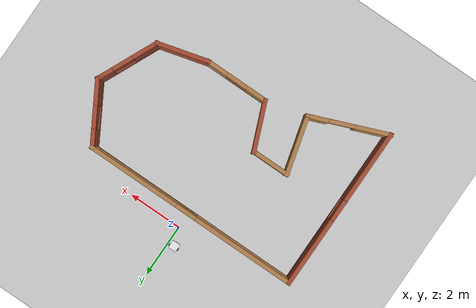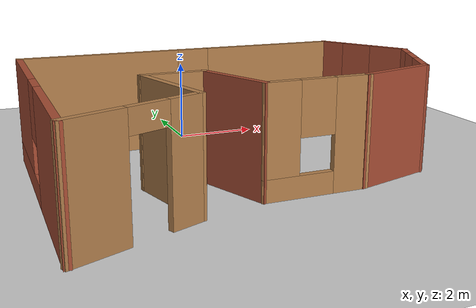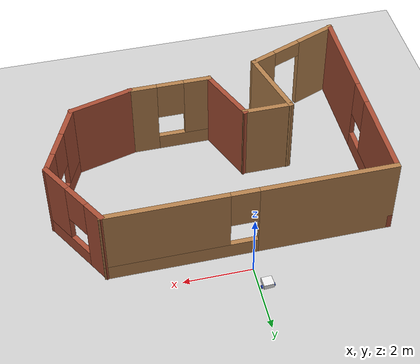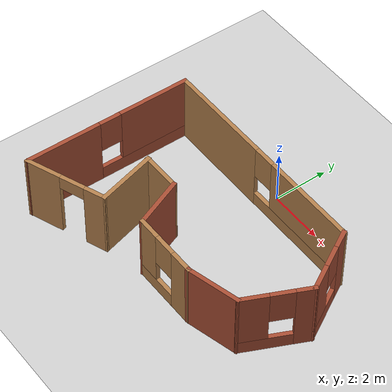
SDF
<sdf version="1.7">
 <world name="default">
  <light name="sun" type="directional">
   <pose>0 0 10 0 -0 0</pose>
   <diffuse>0.8 0.8 0.8 1</diffuse>
   <specular>0.2 0.2 0.2 1</specular>
   <attenuation>
    <range>1000</range>
    <constant>0.9</constant>
    <linear>0.01</linear>
    <quadratic>0.001</quadratic>
   </attenuation>
   <direction>-0.5 0.1 -0.9</direction>
   <spot><inner_angle>0</inner_angle><outer_angle>0</outer_angle><falloff>0</falloff></spot>
  </light>
  <model name="ground_plane">
   <static>1</static>
   <link name="link">
    <collision name="collision">
     <geometry><plane><normal>0 0 1</normal><size>100 100</size></plane></geometry>
     <surface>
      <contact><collide_bitmask>65535</collide_bitmask></contact>
      <friction><ode><mu>100</mu><mu2>50</mu2></ode></friction>
     </surface>
    </collision>
    <visual name="visual">
     <cast_shadows>0</cast_shadows>
     <geometry><plane><normal>0 0 1</normal><size>100 100</size></plane></geometry>
     <material>
      <script><uri>file://media/materials/scripts/gazebo.material</uri><name>Gazebo/Grey</name></script>
     </material>
    </visual>
   </link>
  </model>
  <gravity>0 0 -9.8</gravity>
  <magnetic_field>6e-06 2.3e-05 -4.2e-05</magnetic_field>
  <atmosphere type="adiabatic"/>
  <physics type="ode">
   <max_step_size>0.001</max_step_size>
   <real_time_factor>1</real_time_factor>
   <real_time_update_rate>1000</real_time_update_rate>
  </physics>
  <scene><ambient>0.4 0.4 0.4 1</ambient><background>0.7 0.7 0.7 1</background><shadows>1</shadows></scene>
  <audio><device>default</device></audio>
  <spherical_coordinates>
   <surface_model>EARTH_WGS84</surface_model>
   <latitude_deg>0</latitude_deg>
   <longitude_deg>0</longitude_deg>
   <elevation>0</elevation>
   <heading_deg>0</heading_deg>
  </spherical_coordinates>
  <model name="my_bot">
   <link name="base_link">
    <inertial>
     <pose>0.065 0 0.0625 0 -0 0</pose>
     <mass>0.6</mass>
     <inertia>
      <ixx>0.00525625</ixx>
      <ixy>0</ixy>
      <ixz>0.0005625</ixz>
      <iyy>0.00593125</iyy>
      <iyz>0</iyz>
      <izz>0.008275</izz>
     </inertia>
    </inertial>
    <collision name="base_link_fixed_joint_lump__chassis_collision">
     <pose>0.05 0 0.075 0 -0 0</pose>
     <geometry><box><size>0.3 0.3 0.15</size></box></geometry>
    </collision>
    <collision name="base_link_fixed_joint_lump__caster_wheel_collision_1">
     <pose>0.14 0 0 0 -0 0</pose>
     <geometry><sphere><radius>0.05</radius></sphere></geometry>
     <surface><friction><ode><mu>0.001</mu><mu2>0.001</mu2></ode></friction></surface>
    </collision>
    <visual name="base_link_fixed_joint_lump__chassis_visual">
     <pose>0.05 0 0.075 0 -0 0</pose>
     <geometry><box><size>0.3 0.3 0.15</size></box></geometry>
     <material>
      <script><name>Gazebo/White</name><uri>file://media/materials/scripts/gazebo.material</uri></script>
     </material>
    </visual>
    <visual name="base_link_fixed_joint_lump__camera_link_visual_1">
     <pose>0.205 0 0.08 0 -0 0</pose>
     <geometry><box><size>0.01 0.03 0.03</size></box></geometry>
     <material>
      <script><name>Gazebo/Black</name><uri>file://media/materials/scripts/gazebo.material</uri></script>
     </material>
    </visual>
    <visual name="base_link_fixed_joint_lump__caster_wheel_visual_2">
     <pose>0.14 0 0 0 -0 0</pose>
     <geometry><sphere><radius>0.05</radius></sphere></geometry>
     <material>
      <script><name>Gazebo/Black</name><uri>file://media/materials/scripts/gazebo.material</uri></script>
     </material>
    </visual>
    <sensor name="camera" type="camera">
     <visualize>1</visualize>
     <update_rate>10</update_rate>
     <camera>
      <horizontal_fov>1.089</horizontal_fov>
      <image><format>R8G8B8</format><width>640</width><height>480</height></image>
      <clip><near>0.05</near><far>8</far></clip>
     </camera>
     <plugin name="camera_controller" filename="libgazebo_ros_camera.so">
      <frame_name>camera_link_optical</frame_name>
     </plugin>
     <pose>0.205 0 0.08 0 -0 0</pose>
    </sensor>
   </link>
   <joint name="left_wheel_joint" type="revolute">
    <pose relative_to="base_link">0 0.175 0 -1.5708 0 0</pose>
    <parent>base_link</parent>
    <child>left_wheel</child>
    <axis>
     <xyz>0 0 1</xyz>
     <limit><lower>-1e+16</lower><upper>1e+16</upper></limit>
     <dynamics><spring_reference>0</spring_reference><spring_stiffness>0</spring_stiffness></dynamics>
    </axis>
   </joint>
   <link name="left_wheel">
    <pose relative_to="left_wheel_joint">0 0 0 0 -0 0</pose>
    <inertial>
     <mass>0.1</mass>
     <inertia>
      <ixx>7.58333e-05</ixx>
      <ixy>0</ixy>
      <ixz>0</ixz>
      <iyy>7.58333e-05</iyy>
      <iyz>0</iyz>
      <izz>0.000125</izz>
     </inertia>
    </inertial>
    <collision name="left_wheel_collision">
     <geometry><cylinder><length>0.04</length><radius>0.05</radius></cylinder></geometry>
    </collision>
    <visual name="left_wheel_visual">
     <geometry><cylinder><length>0.04</length><radius>0.05</radius></cylinder></geometry>
     <material>
      <script><name>Gazebo/Blue</name><uri>file://media/materials/scripts/gazebo.material</uri></script>
     </material>
    </visual>
   </link>
   <joint name="right_wheel_joint" type="revolute">
    <pose relative_to="base_link">0 -0.175 0 1.5708 -0 0</pose>
    <parent>base_link</parent>
    <child>right_wheel</child>
    <axis>
     <xyz>0 0 -1</xyz>
     <limit><lower>-1e+16</lower><upper>1e+16</upper></limit>
     <dynamics><spring_reference>0</spring_reference><spring_stiffness>0</spring_stiffness></dynamics>
    </axis>
   </joint>
   <link name="right_wheel">
    <pose relative_to="right_wheel_joint">0 0 0 0 -0 0</pose>
    <inertial>
     <mass>0.1</mass>
     <inertia>
      <ixx>7.58333e-05</ixx>
      <ixy>0</ixy>
      <ixz>0</ixz>
      <iyy>7.58333e-05</iyy>
      <iyz>0</iyz>
      <izz>0.000125</izz>
     </inertia>
    </inertial>
    <collision name="right_wheel_collision">
     <geometry><cylinder><length>0.04</length><radius>0.05</radius></cylinder></geometry>
    </collision>
    <visual name="right_wheel_visual">
     <geometry><cylinder><length>0.04</length><radius>0.05</radius></cylinder></geometry>
     <material>
      <script><name>Gazebo/Blue</name><uri>file://media/materials/scripts/gazebo.material</uri></script>
     </material>
    </visual>
   </link>
   <static>0</static>
   <plugin name="diff_drive" filename="libgazebo_ros_diff_drive.so">
    <left_joint>left_wheel_joint</left_joint>
    <right_joint>right_wheel_joint</right_joint>
    <wheel_separation>0.35</wheel_separation>
    <wheel_diameter>0.1</wheel_diameter>
    <max_wheel_torque>200</max_wheel_torque>
    <max_wheel_acceleration>10.0</max_wheel_acceleration>
    <odometry_frame>odom</odometry_frame>
    <robot_base_frame>base_link</robot_base_frame>
    <publish_odom>1</publish_odom>
    <publish_odom_tf>1</publish_odom_tf>
    <publish_wheel_tf>1</publish_wheel_tf>
   </plugin>
   <pose>-0.240761 0.673867 0.05 -0 1e-06 -1.51873</pose>
  </model>
  <model name="building">
   <pose>0.491842 -3.43201 0 0 -0 0</pose>
   <link name="Wall_0">
    <pose>-4.64664 -0.284616 0 0 -0 1.5708</pose>
    <visual name="Wall_0_Visual_0">
     <pose>-1.73077 0 1.25 0 -0 0</pose>
     <geometry><box><size>2.78845 0.15 2.5</size></box></geometry>
     <material>
      <script><uri>file://media/materials/scripts/gazebo.material</uri><name>Gazebo/Bricks</name></script>
      <ambient>1 1 1 1</ambient>
     </material>
     <meta><layer>0</layer></meta>
    </visual>
    <collision name="Wall_0_Collision_0">
     <geometry><box><size>2.78845 0.15 2.5</size></box></geometry>
     <pose>-1.73077 0 1.25 0 -0 0</pose>
    </collision>
    <visual name="Wall_0_Visual_1">
     <pose>1.39423 0 0.25 0 -0 0</pose>
     <geometry><box><size>3.46155 0.15 0.5</size></box></geometry>
     <material>
      <script><uri>file://media/materials/scripts/gazebo.material</uri><name>Gazebo/Bricks</name></script>
      <ambient>1 1 1 1</ambient>
     </material>
     <meta><layer>0</layer></meta>
    </visual>
    <collision name="Wall_0_Collision_1">
     <geometry><box><size>3.46155 0.15 0.5</size></box></geometry>
     <pose>1.39423 0 0.25 0 -0 0</pose>
    </collision>
    <visual name="Wall_0_Visual_2">
     <pose>1.79422 0 1.5 0 -0 0</pose>
     <geometry><box><size>2.66155 0.15 2</size></box></geometry>
     <material>
      <script><uri>file://media/materials/scripts/gazebo.material</uri><name>Gazebo/Bricks</name></script>
      <ambient>1 1 1 1</ambient>
     </material>
     <meta><layer>0</layer></meta>
    </visual>
    <collision name="Wall_0_Collision_2">
     <geometry><box><size>2.66155 0.15 2</size></box></geometry>
     <pose>1.79422 0 1.5 0 -0 0</pose>
    </collision>
    <visual name="Wall_0_Visual_3">
     <pose>0.06345 0 1.9 0 -0 0</pose>
     <geometry><box><size>0.8 0.15 1.2</size></box></geometry>
     <material>
      <script><uri>file://media/materials/scripts/gazebo.material</uri><name>Gazebo/Bricks</name></script>
      <ambient>1 1 1 1</ambient>
     </material>
     <meta><layer>0</layer></meta>
    </visual>
    <collision name="Wall_0_Collision_3">
     <geometry><box><size>0.8 0.15 1.2</size></box></geometry>
     <pose>0.06345 0 1.9 0 -0 0</pose>
    </collision>
   </link>
   <link name="Wall_1">
    <pose>-0.583417 2.76538 0 0 -0 0</pose>
    <visual name="Wall_1_Visual_0">
     <pose>-2.1715 0 1.25 0 -0 0</pose>
     <geometry><box><size>3.93345 0.15 2.5</size></box></geometry>
     <material>
      <script><uri>file://media/materials/scripts/gazebo.material</uri><name>Gazebo/Wood</name></script>
      <ambient>1 1 1 1</ambient>
     </material>
     <meta><layer>0</layer></meta>
    </visual>
    <collision name="Wall_1_Collision_0">
     <geometry><box><size>3.93345 0.15 2.5</size></box></geometry>
     <pose>-2.1715 0 1.25 0 -0 0</pose>
    </collision>
    <visual name="Wall_1_Visual_1">
     <pose>1.96673 0 0.25 0 -0 0</pose>
     <geometry><box><size>4.343 0.15 0.5</size></box></geometry>
     <material>
      <script><uri>file://media/materials/scripts/gazebo.material</uri><name>Gazebo/Wood</name></script>
      <ambient>1 1 1 1</ambient>
     </material>
     <meta><layer>0</layer></meta>
    </visual>
    <collision name="Wall_1_Collision_1">
     <geometry><box><size>4.343 0.15 0.5</size></box></geometry>
     <pose>1.96673 0 0.25 0 -0 0</pose>
    </collision>
    <visual name="Wall_1_Visual_2">
     <pose>2.36673 0 1.5 0 -0 0</pose>
     <geometry><box><size>3.543 0.15 2</size></box></geometry>
     <material>
      <script><uri>file://media/materials/scripts/gazebo.material</uri><name>Gazebo/Wood</name></script>
      <ambient>1 1 1 1</ambient>
     </material>
     <meta><layer>0</layer></meta>
    </visual>
    <collision name="Wall_1_Collision_2">
     <geometry><box><size>3.543 0.15 2</size></box></geometry>
     <pose>2.36673 0 1.5 0 -0 0</pose>
    </collision>
    <visual name="Wall_1_Visual_3">
     <pose>0.195225 0 1.9 0 -0 0</pose>
     <geometry><box><size>0.8 0.15 1.2</size></box></geometry>
     <material>
      <script><uri>file://media/materials/scripts/gazebo.material</uri><name>Gazebo/Wood</name></script>
      <ambient>1 1 1 1</ambient>
     </material>
     <meta><layer>0</layer></meta>
    </visual>
    <collision name="Wall_1_Collision_3">
     <geometry><box><size>0.8 0.15 1.2</size></box></geometry>
     <pose>0.195225 0 1.9 0 -0 0</pose>
    </collision>
   </link>
   <link name="Wall_11">
    <collision name="Wall_11_Collision">
     <geometry><box><size>2.25 0.15 2.5</size></box></geometry>
     <pose>0 0 1.25 0 -0 0</pose>
    </collision>
    <visual name="Wall_11_Visual">
     <pose>0 0 1.25 0 -0 0</pose>
     <geometry><box><size>2.25 0.15 2.5</size></box></geometry>
     <material>
      <script><uri>file://media/materials/scripts/gazebo.material</uri><name>Gazebo/Wood</name></script>
      <ambient>1 1 1 1</ambient>
     </material>
     <meta><layer>0</layer></meta>
    </visual>
    <pose>-2.2253 -1.25042 0 0 -0 -1.309</pose>
   </link>
   <link name="Wall_12">
    <pose>-3.30009 -2.79963 0 0 -0 -2.76342</pose>
    <visual name="Wall_12_Visual_0">
     <pose>-1.11319 0 1.25 0 -0 0</pose>
     <geometry><box><size>0.821499 0.15 2.5</size></box></geometry>
     <material>
      <script><uri>file://media/materials/scripts/gazebo.material</uri><name>Gazebo/Wood</name></script>
      <ambient>1 1 1 1</ambient>
     </material>
     <meta><layer>0</layer></meta>
    </visual>
    <collision name="Wall_12_Collision_0">
     <geometry><box><size>0.821499 0.15 2.5</size></box></geometry>
     <pose>-1.11319 0 1.25 0 -0 0</pose>
    </collision>
    <visual name="Wall_12_Visual_1">
     <pose>0.860749 0 1.25 0 -0 0</pose>
     <geometry><box><size>1.32637 0.15 2.5</size></box></geometry>
     <material>
      <script><uri>file://media/materials/scripts/gazebo.material</uri><name>Gazebo/Wood</name></script>
      <ambient>1 1 1 1</ambient>
     </material>
     <meta><layer>0</layer></meta>
    </visual>
    <collision name="Wall_12_Collision_1">
     <geometry><box><size>1.32637 0.15 2.5</size></box></geometry>
     <pose>0.860749 0 1.25 0 -0 0</pose>
    </collision>
    <visual name="Wall_12_Visual_2">
     <pose>-0.252437 0 2.25 0 -0 0</pose>
     <geometry><box><size>0.9 0.15 0.5</size></box></geometry>
     <material>
      <script><uri>file://media/materials/scripts/gazebo.material</uri><name>Gazebo/Wood</name></script>
      <ambient>1 1 1 1</ambient>
     </material>
     <meta><layer>0</layer></meta>
    </visual>
    <collision name="Wall_12_Collision_2">
     <geometry><box><size>0.9 0.15 0.5</size></box></geometry>
     <pose>-0.252437 0 2.25 0 -0 0</pose>
    </collision>
   </link>
   <link name="Wall_2">
    <pose>4.05408 1.7478 0 0 -0 -1.0472</pose>
    <visual name="Wall_2_Visual_0">
     <pose>-0.895833 0 1.25 0 -0 0</pose>
     <geometry><box><size>0.708334 0.15 2.5</size></box></geometry>
     <material>
      <script><uri>file://media/materials/scripts/gazebo.material</uri><name>Gazebo/Bricks</name></script>
      <ambient>1 1 1 1</ambient>
     </material>
     <meta><layer>0</layer></meta>
    </visual>
    <collision name="Wall_2_Collision_0">
     <geometry><box><size>0.708334 0.15 2.5</size></box></geometry>
     <pose>-0.895833 0 1.25 0 -0 0</pose>
    </collision>
    <visual name="Wall_2_Visual_1">
     <pose>0.354167 0 0.25 0 -0 0</pose>
     <geometry><box><size>1.79167 0.15 0.5</size></box></geometry>
     <material>
      <script><uri>file://media/materials/scripts/gazebo.material</uri><name>Gazebo/Bricks</name></script>
      <ambient>1 1 1 1</ambient>
     </material>
     <meta><layer>0</layer></meta>
    </visual>
    <collision name="Wall_2_Collision_1">
     <geometry><box><size>1.79167 0.15 0.5</size></box></geometry>
     <pose>0.354167 0 0.25 0 -0 0</pose>
    </collision>
    <visual name="Wall_2_Visual_2">
     <pose>0.754167 0 1.5 0 -0 0</pose>
     <geometry><box><size>0.991666 0.15 2</size></box></geometry>
     <material>
      <script><uri>file://media/materials/scripts/gazebo.material</uri><name>Gazebo/Bricks</name></script>
      <ambient>1 1 1 1</ambient>
     </material>
     <meta><layer>0</layer></meta>
    </visual>
    <collision name="Wall_2_Collision_2">
     <geometry><box><size>0.991666 0.15 2</size></box></geometry>
     <pose>0.754167 0 1.5 0 -0 0</pose>
    </collision>
    <visual name="Wall_2_Visual_3">
     <pose>-0.141666 0 1.9 0 -0 0</pose>
     <geometry><box><size>0.8 0.15 1.2</size></box></geometry>
     <material>
      <script><uri>file://media/materials/scripts/gazebo.material</uri><name>Gazebo/Bricks</name></script>
      <ambient>1 1 1 1</ambient>
     </material>
     <meta><layer>0</layer></meta>
    </visual>
    <collision name="Wall_2_Collision_3">
     <geometry><box><size>0.8 0.15 1.2</size></box></geometry>
     <pose>-0.141666 0 1.9 0 -0 0</pose>
    </collision>
   </link>
   <link name="Wall_3">
    <pose>4.15434 -0.334324 0 0 -0 -2.00003</pose>
    <visual name="Wall_3_Visual_0">
     <pose>-0.912546 0 1.25 0 -0 0</pose>
     <geometry><box><size>0.666418 0.15 2.5</size></box></geometry>
     <material>
      <script><uri>file://media/materials/scripts/gazebo.material</uri><name>Gazebo/Bricks</name></script>
      <ambient>1 1 1 1</ambient>
     </material>
     <meta><layer>0</layer></meta>
    </visual>
    <collision name="Wall_3_Collision_0">
     <geometry><box><size>0.666418 0.15 2.5</size></box></geometry>
     <pose>-0.912546 0 1.25 0 -0 0</pose>
    </collision>
    <visual name="Wall_3_Visual_1">
     <pose>0.333209 0 0.25 0 -0 0</pose>
     <geometry><box><size>1.82509 0.15 0.5</size></box></geometry>
     <material>
      <script><uri>file://media/materials/scripts/gazebo.material</uri><name>Gazebo/Bricks</name></script>
      <ambient>1 1 1 1</ambient>
     </material>
     <meta><layer>0</layer></meta>
    </visual>
    <collision name="Wall_3_Collision_1">
     <geometry><box><size>1.82509 0.15 0.5</size></box></geometry>
     <pose>0.333209 0 0.25 0 -0 0</pose>
    </collision>
    <visual name="Wall_3_Visual_2">
     <pose>0.733209 0 1.5 0 -0 0</pose>
     <geometry><box><size>1.02509 0.15 2</size></box></geometry>
     <material>
      <script><uri>file://media/materials/scripts/gazebo.material</uri><name>Gazebo/Bricks</name></script>
      <ambient>1 1 1 1</ambient>
     </material>
     <meta><layer>0</layer></meta>
    </visual>
    <collision name="Wall_3_Collision_2">
     <geometry><box><size>1.02509 0.15 2</size></box></geometry>
     <pose>0.733209 0 1.5 0 -0 0</pose>
    </collision>
    <visual name="Wall_3_Visual_3">
     <pose>-0.179337 0 1.9 0 -0 0</pose>
     <geometry><box><size>0.8 0.15 1.2</size></box></geometry>
     <material>
      <script><uri>file://media/materials/scripts/gazebo.material</uri><name>Gazebo/Bricks</name></script>
      <ambient>1 1 1 1</ambient>
     </material>
     <meta><layer>0</layer></meta>
    </visual>
    <collision name="Wall_3_Collision_3">
     <geometry><box><size>0.8 0.15 1.2</size></box></geometry>
     <pose>-0.179337 0 1.9 0 -0 0</pose>
    </collision>
   </link>
   <link name="Wall_4">
    <collision name="Wall_4_Collision">
     <geometry><box><size>2 0.15 2.5</size></box></geometry>
     <pose>0 0 1.25 0 -0 0</pose>
    </collision>
    <visual name="Wall_4_Visual">
     <pose>0 0 1.25 0 -0 0</pose>
     <geometry><box><size>2 0.15 2.5</size></box></geometry>
     <material>
      <script><uri>file://media/materials/scripts/gazebo.material</uri><name>Gazebo/Bricks</name></script>
      <ambient>1 1 1 1</ambient>
     </material>
     <meta><layer>0</layer></meta>
    </visual>
    <pose>2.77362 -1.63828 0 0 -0 -2.87979</pose>
   </link>
   <link name="Wall_5">
    <pose>0.705134 -1.87769 0 0 -0 3.14159</pose>
    <visual name="Wall_5_Visual_0">
     <pose>-0.820562 0 1.25 0 -0 0</pose>
     <geometry><box><size>0.858877 0.15 2.5</size></box></geometry>
     <material>
      <script><uri>file://media/materials/scripts/gazebo.material</uri><name>Gazebo/Wood</name></script>
      <ambient>1 1 1 1</ambient>
     </material>
     <meta><layer>0</layer></meta>
    </visual>
    <collision name="Wall_5_Collision_0">
     <geometry><box><size>0.858877 0.15 2.5</size></box></geometry>
     <pose>-0.820562 0 1.25 0 -0 0</pose>
    </collision>
    <visual name="Wall_5_Visual_1">
     <pose>0.429438 0 0.25 0 -0 0</pose>
     <geometry><box><size>1.64112 0.15 0.5</size></box></geometry>
     <material>
      <script><uri>file://media/materials/scripts/gazebo.material</uri><name>Gazebo/Wood</name></script>
      <ambient>1 1 1 1</ambient>
     </material>
     <meta><layer>0</layer></meta>
    </visual>
    <collision name="Wall_5_Collision_1">
     <geometry><box><size>1.64112 0.15 0.5</size></box></geometry>
     <pose>0.429438 0 0.25 0 -0 0</pose>
    </collision>
    <visual name="Wall_5_Visual_2">
     <pose>0.829438 0 1.5 0 -0 0</pose>
     <geometry><box><size>0.841123 0.15 2</size></box></geometry>
     <material>
      <script><uri>file://media/materials/scripts/gazebo.material</uri><name>Gazebo/Wood</name></script>
      <ambient>1 1 1 1</ambient>
     </material>
     <meta><layer>0</layer></meta>
    </visual>
    <collision name="Wall_5_Collision_2">
     <geometry><box><size>0.841123 0.15 2</size></box></geometry>
     <pose>0.829438 0 1.5 0 -0 0</pose>
    </collision>
    <visual name="Wall_5_Visual_3">
     <pose>0.008877 0 1.9 0 -0 0</pose>
     <geometry><box><size>0.8 0.15 1.2</size></box></geometry>
     <material>
      <script><uri>file://media/materials/scripts/gazebo.material</uri><name>Gazebo/Wood</name></script>
      <ambient>1 1 1 1</ambient>
     </material>
     <meta><layer>0</layer></meta>
    </visual>
    <collision name="Wall_5_Collision_3">
     <geometry><box><size>0.8 0.15 1.2</size></box></geometry>
     <pose>0.008877 0 1.9 0 -0 0</pose>
    </collision>
   </link>
   <link name="Wall_6">
    <collision name="Wall_6_Collision">
     <geometry><box><size>1.93792 0.15 2.5</size></box></geometry>
     <pose>0 0 1.25 0 -0 0</pose>
    </collision>
    <visual name="Wall_6_Visual">
     <pose>0 0 1.25 0 -0 0</pose>
     <geometry><box><size>1.93792 0.15 2.5</size></box></geometry>
     <material>
      <script><uri>file://media/materials/scripts/gazebo.material</uri><name>Gazebo/Bricks</name></script>
      <ambient>1 1 1 1</ambient>
     </material>
     <meta><layer>0</layer></meta>
    </visual>
    <pose>-0.808461 -1.05033 0 0 -0 1.95925</pose>
   </link>
   <link name="Wall_7">
    <collision name="Wall_7_Collision">
     <geometry><box><size>1.5 0.15 2.5</size></box></geometry>
     <pose>0 0 1.25 0 -0 0</pose>
    </collision>
    <visual name="Wall_7_Visual">
     <pose>0 0 1.25 0 -0 0</pose>
     <geometry><box><size>1.5 0.15 2.5</size></box></geometry>
     <material>
      <script><uri>file://media/materials/scripts/gazebo.material</uri><name>Gazebo/Wood</name></script>
      <ambient>1 1 1 1</ambient>
     </material>
     <meta><layer>0</layer></meta>
    </visual>
    <pose>-1.82206 -0.2362 0 0 -0 3.14159</pose>
   </link>
   <static>1</static>
  </model>
 </world>
</sdf>
